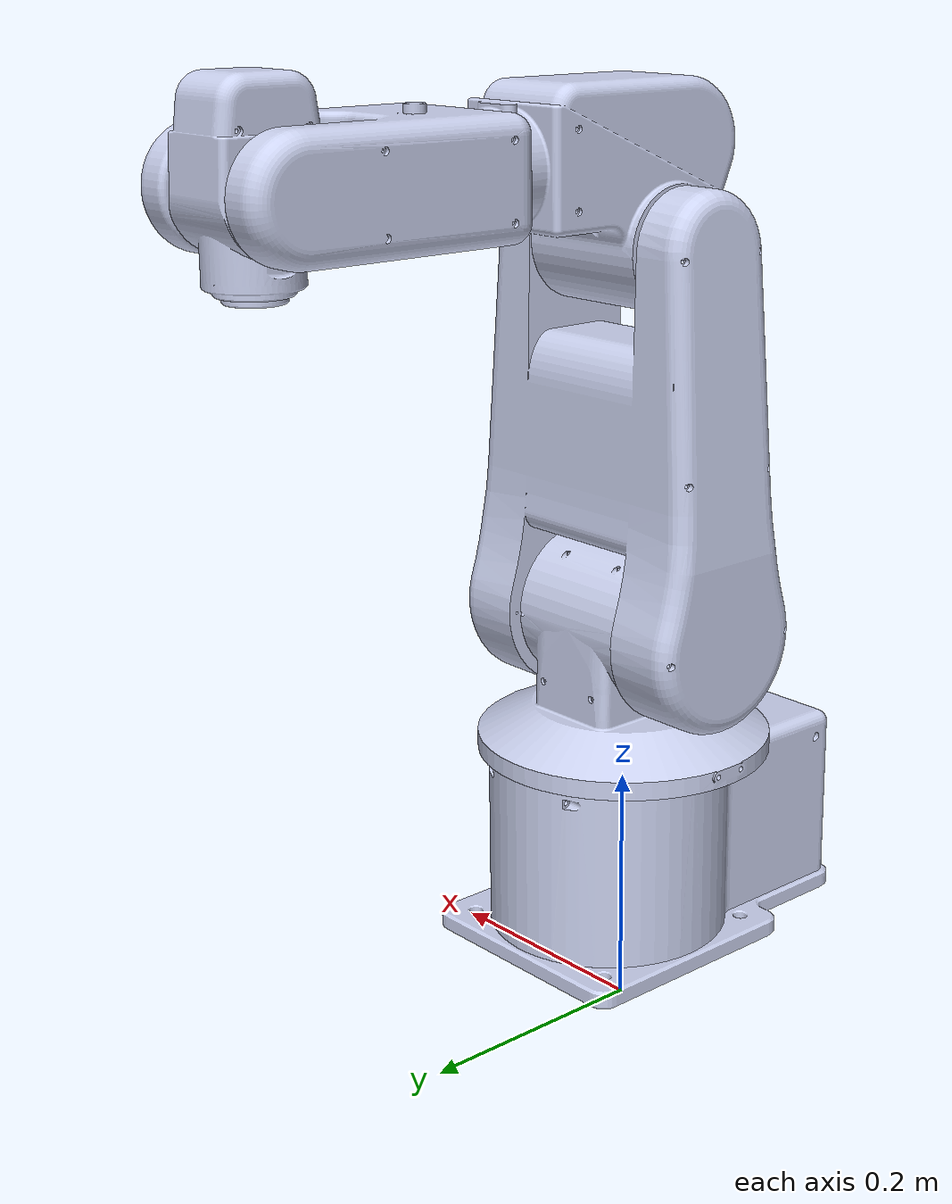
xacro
<?xml version="1.0"?>
<robot name="hrt-120_robot" xmlns:xacro="http://ros.org/wiki/xacro">

  <xacro:property name="M_PI" value="3.1415926536"/>

  <link name="base_footprint"/>
  <joint name="joint_0" type="fixed">
    <origin xyz="0 0 0.0532" rpy="0 0 0" />
    <parent link="base_footprint" />
    <child link="base_link" />
  </joint>

  <link name="base_link">
    <inertial>
      <origin xyz="-0.010934 0.23134 0.0051509" rpy="0 0 0" />
      <mass value="0.00001" />
      <inertia ixx="10" ixy="0.0" ixz="0.0" iyy="10" iyz="0.0" izz="10" />
    </inertial>
    <visual>
      <origin xyz="0.017266 0 0" rpy="0 0 0" />
      <geometry>
        <mesh filename="package://hrt-120_robot_description/meshes/base_link.STL" />
      </geometry>
      <material name="">
        <color rgba="0.79216 0.81961 0.93333 1" />
      </material>
    </visual>
    <collision>
      <origin xyz="0.017266 0 0" rpy="0 0 0" />
      <geometry>
        <mesh filename="package://hrt-120_robot_description/meshes/base_link.STL" />
      </geometry>
    </collision>
  </link>

  <link name="link_1">
    <inertial>
      <origin xyz="-0.010934 0.23134 0.3051509" rpy="0 0 0" />
      <mass value="0.00001" />
      <inertia ixx="10" ixy="0.0" ixz="0.0" iyy="10" iyz="0.0" izz="10" />
    </inertial>
    <visual>
      <origin xyz="0 0 0" rpy="0 0 0" />
      <geometry>
        <mesh filename="package://hrt-120_robot_description/meshes/link_1.STL" />
      </geometry>
      <material name="">
        <color rgba="0.79216 0.81961 0.93333 1" />
      </material>
    </visual>
    <collision>
      <origin xyz="0 0 0" rpy="0 0 0" />
      <geometry>
        <mesh filename="package://hrt-120_robot_description/meshes/link_1.STL" />
      </geometry>
    </collision>
  </link>
  <joint name="joint_1" type="revolute">
    <origin xyz="0 0 0" rpy="0 0 0" />
    <parent link="base_link" />
    <child link="link_1" />
    <axis xyz="0 0 1" />
    <limit lower="-2.6179" upper="2.6179" effort="100" velocity="3" />
  </joint>
  <link name="link_2">
    <inertial>
      <origin xyz="-0.010934 0.23134 0.0051509" rpy="0 0 0" />
      <mass value="0.00001" />
      <inertia ixx="10" ixy="0.0" ixz="0.0" iyy="10" iyz="0.0" izz="10" />
    </inertial>
    <visual>
      <origin xyz="0 0 -0.289" rpy="0 0 0" />
      <geometry>
        <mesh filename="package://hrt-120_robot_description/meshes/link_2.STL" />
      </geometry>
      <material name="">
        <color rgba="0.79216 0.81961 0.93333 1" />
      </material>
    </visual>
    <collision>
      <origin xyz="0 0 -0.289" rpy="0 0 0" />
      <geometry>
        <mesh filename="package://hrt-120_robot_description/meshes/link_2.STL" />
      </geometry>
    </collision>
  </link>
  <joint name="joint_2" type="revolute">
    <origin xyz="0 0 0.289" rpy="0 0 0" />
    <parent link="link_1" />
    <child link="link_2" />
    <axis xyz="1 0 0" />
    <limit lower="-1.5708" upper="1.5708" effort="100" velocity="3" />
  </joint>

  <link name="link_3">
    <inertial>
      <origin xyz="-0.010934 0.23134 0.0051509" rpy="0 0 0" />
      <mass value="0.00001" />
      <inertia ixx="10" ixy="0.0" ixz="0.0" iyy="10" iyz="0.0" izz="10" />
    </inertial>
    <visual>
      <origin xyz="0 0 -0.589" rpy="0 0 0" />
      <geometry>
        <mesh filename="package://hrt-120_robot_description/meshes/link_3.STL" />
      </geometry>
      <material name="">
        <color rgba="0.79216 0.81961 0.93333 1" />
      </material>
    </visual>
    <collision>
      <origin xyz="0 0 -0.589" rpy="0 0 0" />
      <geometry>
        <mesh filename="package://hrt-120_robot_description/meshes/link_3.STL" />
      </geometry>
    </collision>
  </link>
  <joint name="joint_3" type="revolute">
    <origin xyz="0 0 0.3" rpy="0 0 0" />
    <parent link="link_2" />
    <child link="link_3" />
    <axis xyz="1 0 0" />
    <limit lower="-1.5708" upper="1.3089" effort="100" velocity="3" />
  </joint>

  <link name="link_4">
    <inertial>
      <origin xyz="-0.010934 0.23134 0.0051509" rpy="0 0 0" />
      <mass value="0.00001" />
      <inertia ixx="10" ixy="0.0" ixz="0.0" iyy="10" iyz="0.0" izz="10" />
    </inertial>
    <visual>
      <origin xyz="0 -0.342 -0.654" rpy="0 0 0" />
      <geometry>
        <mesh filename="package://hrt-120_robot_description/meshes/link_4.STL" />
      </geometry>
      <material name="">
        <color rgba="0.79216 0.81961 0.93333 1" />
      </material>
    </visual>
    <collision>
      <origin xyz="0 -0.342 -0.654" rpy="0 0 0" />
      <geometry>
        <mesh filename="package://hrt-120_robot_description/meshes/link_4.STL" />
      </geometry>
    </collision>
  </link>
  <joint name="joint_4" type="revolute">
    <origin xyz="0 0.342 0.065" rpy="0 0 0" />
    <parent link="link_3" />
    <child link="link_4" />
    <axis xyz="0 1 0" />
    <limit lower="-2.0944" upper="2.0944" effort="100" velocity="3" />
  </joint>

  <link name="link_5">
    <inertial>
      <origin xyz="-0.010934 0.23134 0.0051509" rpy="0 0 0" />
      <mass value="0.00001" />
      <inertia ixx="10" ixy="0.0" ixz="0.0" iyy="10" iyz="0.0" izz="10" />
    </inertial>
    <visual>
      <origin xyz="0 -0.342 -0.654" rpy="0 0 0" />
      <geometry>
        <mesh filename="package://hrt-120_robot_description/meshes/link_5.STL" />
      </geometry>
      <material name="">
        <color rgba="0.79216 0.81961 0.93333 1" />
      </material>
    </visual>
    <collision>
      <origin xyz="0 -0.342 -0.654" rpy="0 0 0" />
      <geometry>
        <mesh filename="package://hrt-120_robot_description/meshes/link_5.STL" />
      </geometry>
    </collision>
  </link>
  <joint name="joint_5" type="revolute">
    <origin xyz="0 0 0" rpy="0 0 0" />
    <parent link="link_4" />
    <child link="link_5" />
    <axis xyz="1 0 0" />
    <limit lower="-2.0944" upper="2.0944" effort="100" velocity="3" />
  </joint>

  <link name="link_6">
    <inertial>
      <origin xyz="-0.010934 0.23134 0.0051509" rpy="0 0 0" />
      <mass value="0.00001" />
      <inertia ixx="10" ixy="0.0" ixz="0.0" iyy="10" iyz="0.0" izz="10" />
    </inertial>
    <visual>
      <origin xyz="0 -0.342 -0.582" rpy="0 0 0" />
      <geometry>
        <mesh filename="package://hrt-120_robot_description/meshes/link_6.STL" />
      </geometry>
      <material name="">
        <color rgba="0.79216 0.81961 0.93333 1" />
      </material>
    </visual>
    <collision>
      <origin xyz="0 -0.342 -0.582" rpy="0 0 0" />
      <geometry>
        <mesh filename="package://hrt-120_robot_description/meshes/link_6.STL" />
      </geometry>
    </collision>
  </link>
  <joint name="joint_6" type="revolute">
    <origin xyz="0 0 -0.072" rpy="0 0 0" />
    <parent link="link_5" />
    <child link="link_6" />
    <axis xyz="0 0 -1" />
    <limit lower="-2.7925" upper="2.7925" effort="100" velocity="3" />
  </joint>

  <link name="tool0"/>
  <joint name="joint_tool0" type="fixed">
    <origin xyz="0 -0.013 0" rpy="0 0 0" />
    <parent link="link_6" />
    <child link="tool0" />
  </joint>

  <!-- Transmissions for ROS Control -->
  <xacro:macro name="transmission_block" params="joint_name">
    <transmission name="tran1">
      <type>transmission_interface/SimpleTransmission</type>
      <joint name="${joint_name}">
        <hardwareInterface>hardware_interface/PositionJointInterface</hardwareInterface>
      </joint>
      <actuator name="motor1">
        <hardwareInterface>hardware_interface/PositionJointInterface</hardwareInterface>
        <mechanicalReduction>1</mechanicalReduction>
      </actuator>
    </transmission>
  </xacro:macro>

  <xacro:transmission_block joint_name="joint_1"/>
  <xacro:transmission_block joint_name="joint_2"/>
  <xacro:transmission_block joint_name="joint_3"/>
  <xacro:transmission_block joint_name="joint_4"/>
  <xacro:transmission_block joint_name="joint_5"/>
  <xacro:transmission_block joint_name="joint_6"/>

  <!-- ros_control plugin -->
  <gazebo>
    <plugin name="gazebo_ros_control" filename="libgazebo_ros_control.so">
      <robotNamespace>/hrt_120_robot</robotNamespace>
      <robotSimType>gazebo_ros_control/DefaultRobotHWSim</robotSimType>
      <legacyModeNS>true</legacyModeNS>
    </plugin>
  </gazebo>

</robot>
